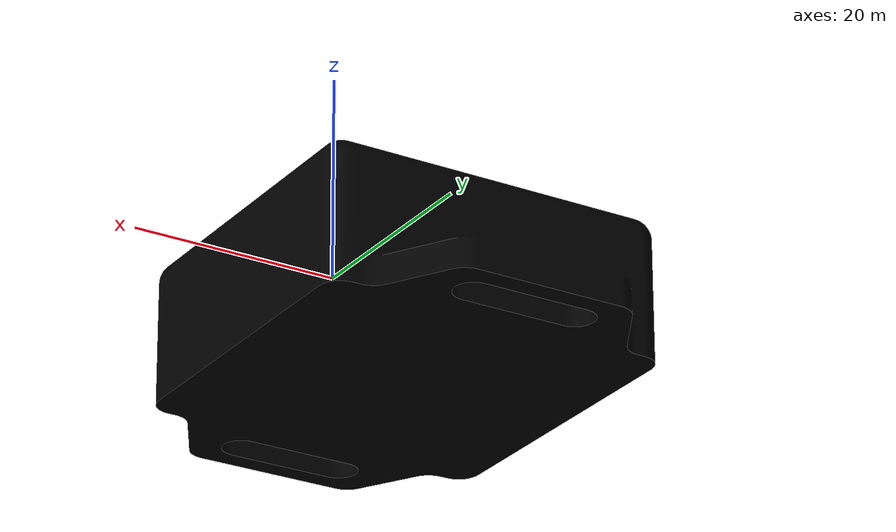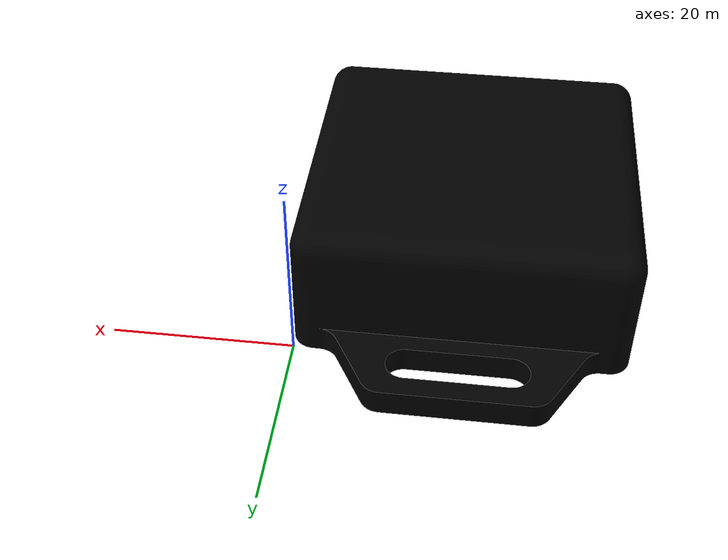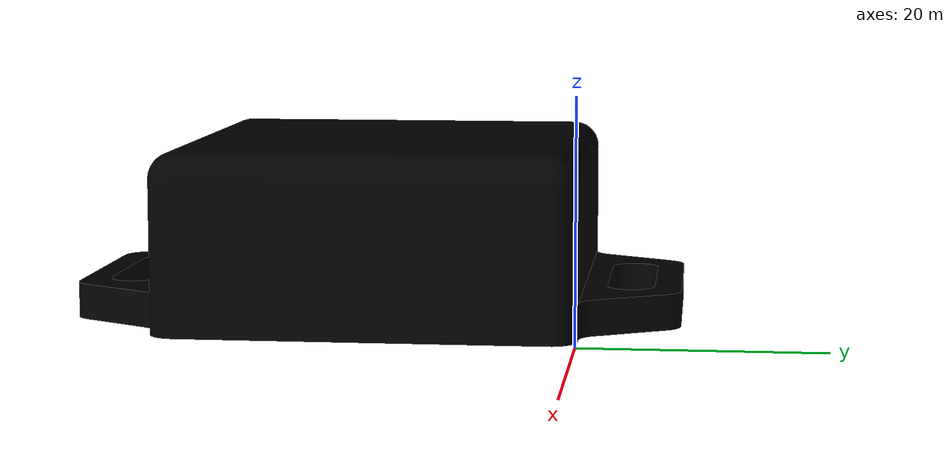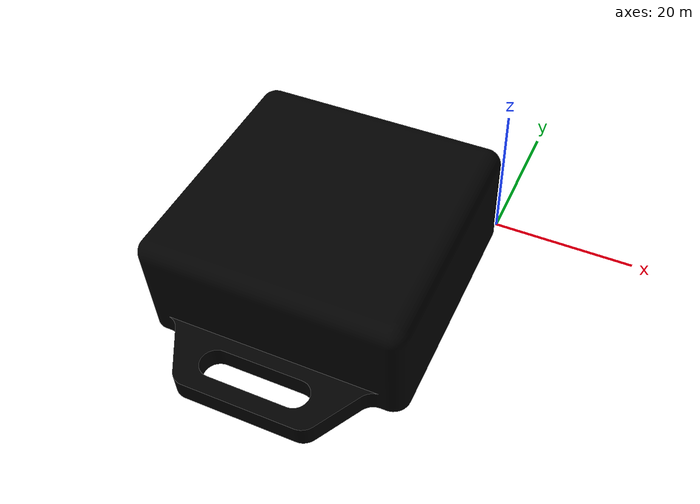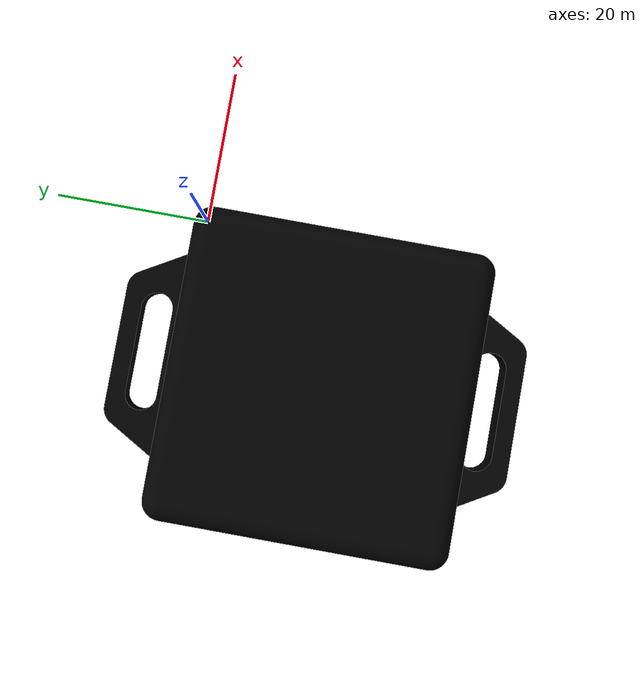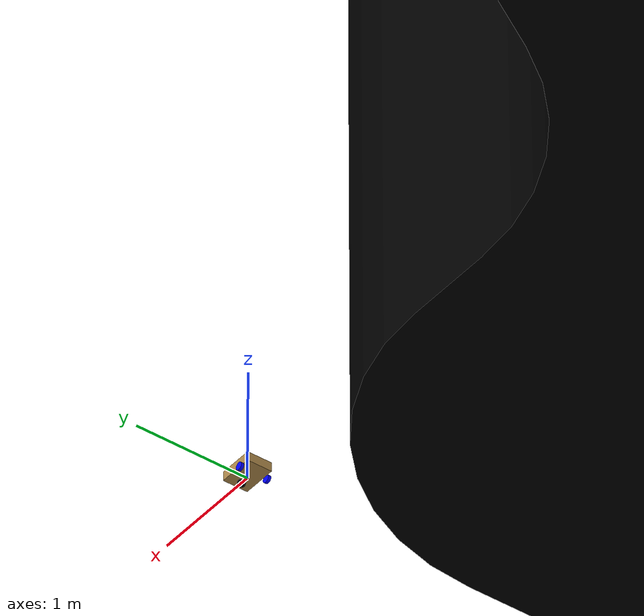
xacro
<?xml version="1.0"?>

<robot xmlns:xacro="http://www.ros.org/wiki/xacro" name="diffbot">

    <!-- COLOR DEFINITIONS -->
    <material name="white">
        <color rgba="1 1 1 1" />
    </material>

    <material name="orange">
        <color rgba="1 0.3 0.1 1"/>
    </material>

    <material name="blue">
        <color rgba="0 0 1 1"/>
    </material>

    <material name="black">
        <color rgba="0 0 0 1"/>
    </material>

    <material name="brown">
        <color rgba="0.7 0.55 0.3 1"/>
    </material>

    <!-- ________________________ ARGUMENT DEFINITIONS ________________________ -->

    <!-- ROS2 VERSION -->
    <xacro:arg name="is_ignition" default="true"/>

    <!-- START SIMULATION OR REAL ROBOT -->
    <xacro:arg name="is_sim" default="true"/>

    <!-- ________________________ XACRO FILE DEPENDENCIES ________________________ -->

    <!-- INCLUDE INERTIAL MACROS -->
    <xacro:include filename="$(find diffbot_description)/urdf/inertial_macros.xacro"/>

    <!-- GAZEBO -->
    <xacro:include filename="$(find diffbot_description)/urdf/diffbot_gazebo.xacro"/>

    <!-- ROS2 CONTROL -->
    <xacro:include filename="$(find diffbot_description)/urdf/diffbot_ros2_control.xacro"/>

    <!-- ________________________ DIFFBOT URDF MODEL ________________________ -->

    <!-- BASE LINK -->
    <link name="base_link"/>

    <!-- CHASSIS -->
    <joint name="chassis_joint" type="fixed">
        <parent link="base_link"/>
        <child link="chassis"/>
        <origin xyz="0 0 0.06"/>
    </joint>

    <link name="chassis">
        <visual>
            <origin xyz="0 0 0"/>
            <geometry>
                <box size="0.3 0.22 0.08"/>
            </geometry>
            <material name="brown"/>
        </visual>
        <collision>
            <origin xyz="0 0 0"/>
            <geometry>
                <box size="0.3 0.22 0.08"/>
            </geometry>
        </collision>
        <xacro:inertial_box mass="0.5" x="0.3" y="0.22" z="0.08">
            <origin xyz="0 0 0" rpy="0 0 0"/>
        </xacro:inertial_box>
    </link>

    <!-- LEFT WHEEL -->
    <joint name="wheel_left_joint" type="continuous">
        <parent link="base_link"/>
        <child link="wheel_left"/>
        <origin xyz="-0.075 0.1225 0" rpy="-${pi/2} 0 0" />
        <axis xyz="0 0 1"/>
    </joint>

    <link name="wheel_left">
        <visual>
            <geometry>
                <cylinder radius="0.033" length="0.025"/>
            </geometry>
            <material name="blue"/>
        </visual>
        <collision>
            <geometry>
                <cylinder radius="0.033" length="0.025"/>
            </geometry>
        </collision>
        <xacro:inertial_cylinder mass="0.1" length="0.025" radius="0.033">
            <origin xyz="0 0 0" rpy="0 0 0"/>
        </xacro:inertial_cylinder>
    </link>

    <!-- RIGHT WHEEL -->

    <joint name="wheel_right_joint" type="continuous">
        <parent link="base_link"/>
        <child link="wheel_right"/>
        <origin xyz="-0.075 -0.1225 0" rpy="${pi/2} 0 0" />
        <axis xyz="0 0 -1"/>
    </joint>

    <link name="wheel_right">
        <visual>
            <geometry>
                <cylinder radius="0.033" length="0.025"/>
            </geometry>
            <material name="blue"/>
        </visual>
        <collision>
            <geometry>
                <cylinder radius="0.033" length="0.025"/>
            </geometry>
        </collision>
        <xacro:inertial_cylinder mass="0.1" length="0.025" radius="0.033">
            <origin xyz="0 0 0" rpy="0 0 0"/>
        </xacro:inertial_cylinder>
    </link>

    <!-- CASTER WHEEL -->

    <joint name="caster_wheel_joint" type="fixed">
        <parent link="base_link"/>
        <child link="caster_wheel"/>
        <origin xyz="0.075 0 0"/>
    </joint>

    <link name="caster_wheel">
        <visual>
            <geometry>
                <sphere radius="0.033"/>
            </geometry>
            <material name="black"/>
        </visual>
        <collision>
            <geometry>
                <sphere radius="0.033"/>
            </geometry>
        </collision>
        <xacro:inertial_sphere mass="0.1" radius="0.033">
            <origin xyz="0 0 0" rpy="0 0 0"/>
        </xacro:inertial_sphere>
    </link>

    <!-- IMU -->
    <link name="imu_link">
        <xacro:inertial_box mass="0.006" x="0.035" y="0.035" z="0.015">
            <origin xyz="0 0 0.003" rpy="0 0 0"/>
        </xacro:inertial_box>
        <visual>
            <origin xyz="0.0175 0.0175 0" rpy="${pi/2} 0 ${pi}"/>
            <geometry>
                <mesh filename="package://diffbot_description/meshes/WT901C.STL"/>
            </geometry>
            <material name="black"/>
        </visual>
        <collision>
            <origin xyz="0.0175 0.0175 0" rpy="${pi/2} 0 ${pi}"/>
            <geometry>
                <mesh filename="package://diffbot_description/meshes/WT901C.STL"/>
            </geometry>
        </collision>
    </link>

    <joint name="imu_joint" type="fixed">
        <origin xyz="${0.3/2 - 0.005 - 0.0175} ${0.22/2 - 0.025 - 0.0175} ${0.06+0.08/2}" rpy="0 0 0" />
        <parent link="base_link"/>
        <child link="imu_link"/>
        <axis xyz="0 0 0"/>
    </joint>

    <!-- LIDAR -->
    <link name="laser_link">
        <inertial>
            <origin xyz="-0.011945780406062 -0.000381929217680526 -0.0170649378129477" rpy="0 0 0" />
            <mass value="0.073084435549317" />
            <inertia ixx="1.96074931730795E-05" ixy="-3.62091076640009E-07" ixz="4.28230084046735E-07" iyy="2.40983835136327E-05" iyz="1.50180909250652E-08" izz="4.14184164228595E-05" />
        </inertial>
        <visual>
            <origin xyz="0 0 0" rpy="0 0 0"/>
            <geometry>
                <mesh filename="package://diffbot_description/meshes/laser_link.STL"/>
            </geometry>
            <material name="black"/>
        </visual>
        <collision>
            <origin xyz="0 0 0" rpy="0 0 0"/>
            <geometry>
                <mesh filename="package://diffbot_description/meshes/laser_link.STL"/>
            </geometry>
        </collision>
    </link>

    <joint name="laser_joint" type="fixed">
        <origin xyz="0 0 ${0.08 + 0.06}" rpy="0 0 3.14" />
        <parent link="base_link"/>
        <child link="laser_link"/>
        <axis xyz="0 0 0"/>
    </joint>

</robot>
